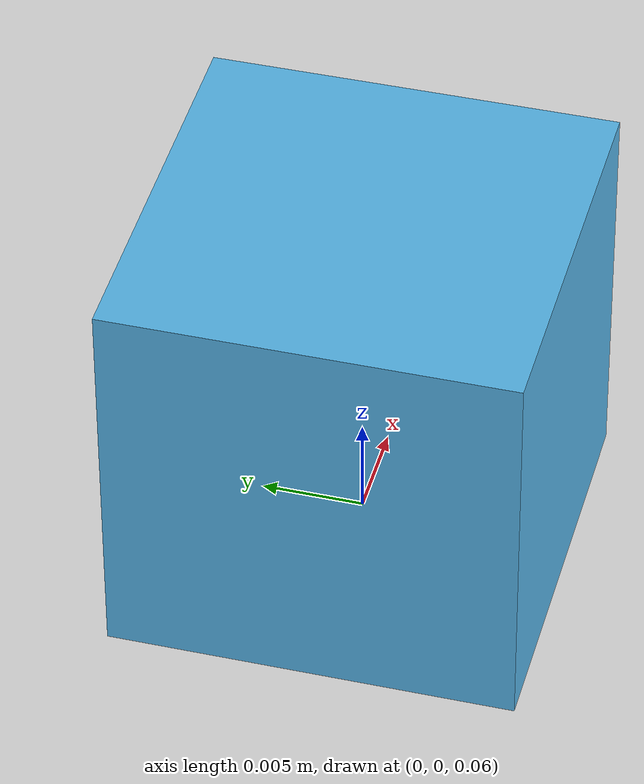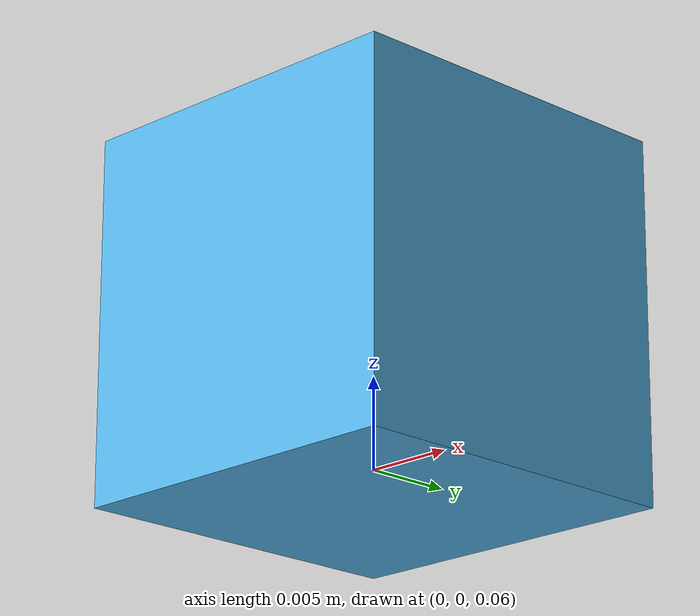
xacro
<?xml version="1.0"?>
<robot xmlns:xacro="http://www.ros.org/wiki/xacro" name="imu">
  <!--the call this by robot name imu -->

<gazebo reference="imu_frame">
    <gravity>true</gravity>
    <sensor name='imu_sensor' type='imu'>
      <always_on>true</always_on>
      <update_rate>200</update_rate>
      <visualize>true</visualize>
      <topic>__default_topic__</topic>
      <plugin name='imu_plugin' filename='libgazebo_ros_imu_sensor.so'>
        <topicName>imu_data</topicName>
        <bodyName>imu_frame</bodyName>
        <frameName>imu_frame</frameName>
        <updateRateHZ>10.0</updateRateHZ>
        <gaussianNoise>0.0</gaussianNoise>
        <xyzOffset>0 0 0</xyzOffset>
        <rpyOffset>0 0 0</rpyOffset>
      </plugin>
    </sensor>
  </gazebo>

<!-- joints  and frames -->
  <link name="base_footprint"/>
  <joint name="imu_joint" type="fixed">
    <parent link="base_footprint"/>
    <child link="imu_frame"/>
    <origin xyz="0.0 0 0.068" rpy="0 0 0"/>
  </joint>
  <link name="imu_frame">
        <collision>
            <origin xyz="0 0 0" rpy="0 0 0"/>
            <geometry>
                <box size="0.02 0.02 0.02"/>
            </geometry>
        </collision>
        <visual>
            <origin xyz="0 0 0" rpy="0 0 0"/>
            <geometry>
                <box size="0.02 0.02 0.02"/>
            </geometry>
        </visual>
        <inertial>
            <mass value="0.001" />
            <origin xyz="0 0 0" rpy="0 0 0"/>
            <inertia ixx="0.00000015" ixy="0" ixz="0" iyy="0.00000015" iyz="0" izz="0.00000015" />
        </inertial>
  </link>

</robot>
